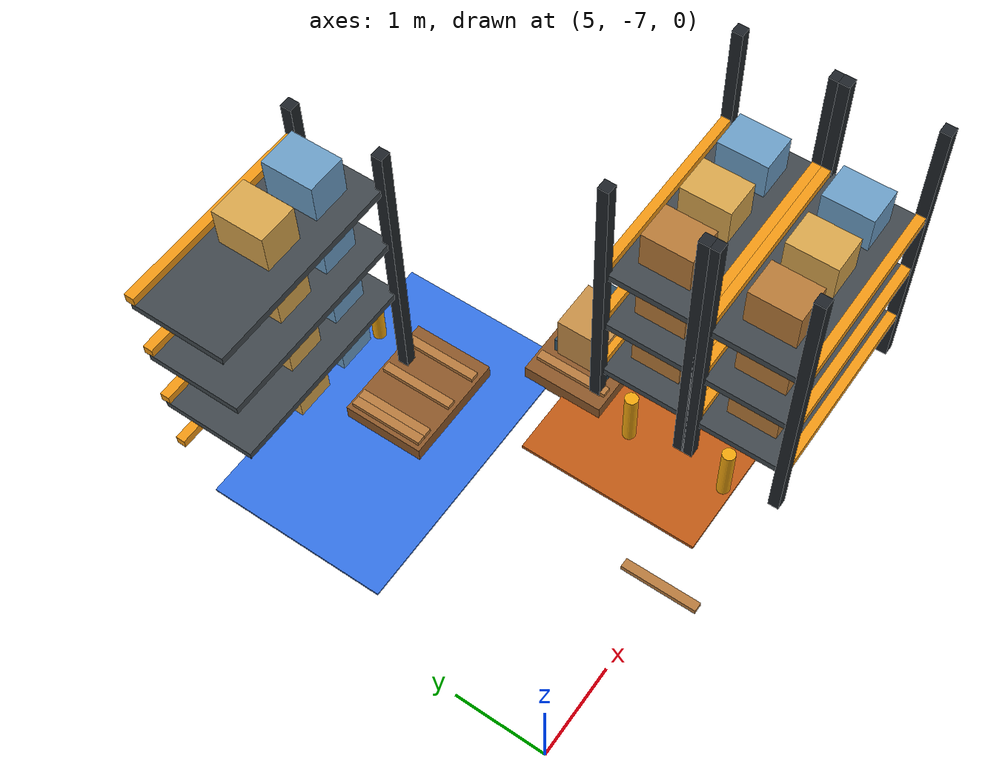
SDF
<sdf version="1.9">
 <world name="synaids_advanced_warehouse">
  <model name="delivery_zone">
   <static>true</static>
   <pose>9 -6 0.02 0 0 0</pose>
   <link name="link">
    <visual name="visual">
     <geometry><box><size>3 2 0.04</size></box></geometry>
     <material><ambient>0.35 0.16 0.03 1</ambient><diffuse>0.75 0.35 0.08 1</diffuse></material>
    </visual>
   </link>
  </model>
  <model name="R3">
   <pose>9 -5 0.25 0 0 0</pose>
   <link name="base_link">
    <inertial><mass>12</mass><inertia><ixx>0.5</ixx><iyy>0.5</iyy><izz>0.5</izz></inertia></inertial>
    <collision name="base_collision"><geometry><box><size>0.9 0.65 0.25</size></box></geometry></collision>
    <visual name="base_visual">
     <geometry><box><size>0.9 0.65 0.25</size></box></geometry>
     <material><ambient>0.10 0.16 0.20 1</ambient><diffuse>0.20 0.32 0.40 1</diffuse></material>
    </visual>
   </link>
   <link name="left_wheel">
    <pose>0 0.38 -0.12 1.5708 0 0</pose>
    <inertial><mass>1</mass><inertia><ixx>0.02</ixx><iyy>0.02</iyy><izz>0.02</izz></inertia></inertial>
    <collision name="collision">
     <geometry><cylinder><radius>0.16</radius><length>0.08</length></cylinder></geometry>
    </collision>
    <visual name="visual">
     <geometry><cylinder><radius>0.16</radius><length>0.08</length></cylinder></geometry>
     <material><ambient>0.03 0.03 0.03 1</ambient><diffuse>0.08 0.08 0.08 1</diffuse></material>
    </visual>
   </link>
   <link name="right_wheel">
    <pose>0 -0.38 -0.12 1.5708 0 0</pose>
    <inertial><mass>1</mass><inertia><ixx>0.02</ixx><iyy>0.02</iyy><izz>0.02</izz></inertia></inertial>
    <collision name="collision">
     <geometry><cylinder><radius>0.16</radius><length>0.08</length></cylinder></geometry>
    </collision>
    <visual name="visual">
     <geometry><cylinder><radius>0.16</radius><length>0.08</length></cylinder></geometry>
     <material><ambient>0.03 0.03 0.03 1</ambient><diffuse>0.08 0.08 0.08 1</diffuse></material>
    </visual>
   </link>
   <link name="sensor">
    <pose>0.35 0 0.18 0 0 0</pose>
    <visual name="visual">
     <geometry><cylinder><radius>0.10</radius><length>0.08</length></cylinder></geometry>
     <material><ambient>0.65 0.65 0.65 1</ambient><diffuse>0.75 0.75 0.75 1</diffuse></material>
    </visual>
   </link>
   <plugin filename="gz-sim-diff-drive-system" name="gz::sim::systems::DiffDrive">
    <left_joint>left_wheel_joint</left_joint>
    <right_joint>right_wheel_joint</right_joint>
    <wheel_separation>0.76</wheel_separation>
    <wheel_radius>0.16</wheel_radius>
    <topic>/R3/cmd_vel</topic>
    <odom_topic>/R3/odom</odom_topic>
    <frame_id>odom</frame_id>
    <child_frame_id>base_link</child_frame_id>
   </plugin>
   <link name="lidar">
    <pose>0 0 0.35 0 0 0</pose>
    <sensor name="lidar_sensor" type="gpu_lidar">
     <topic>/R3/scan</topic>
     <update_rate>10</update_rate>
     <lidar>
      <scan>
       <horizontal>
        <samples>360</samples>
        <resolution>1</resolution>
        <min_angle>-3.14159</min_angle>
        <max_angle>3.14159</max_angle>
       </horizontal>
      </scan>
      <range><min>0.12</min><max>12</max><resolution>0.01</resolution></range>
     </lidar>
    </sensor>
   </link>
   <joint name="left_wheel_joint" type="revolute">
    <parent>base_link</parent>
    <child>left_wheel</child>
    <axis><xyz>0 1 0</xyz></axis>
   </joint>
   <joint name="right_wheel_joint" type="revolute">
    <parent>base_link</parent>
    <child>right_wheel</child>
    <axis><xyz>0 1 0</xyz></axis>
   </joint>
  </model>
  <model name="storage_rack_8_post_2">
   <static>true</static>
   <pose>7.6 -3.5 1.7 0 0 0</pose>
   <link name="link">
    <visual name="visual">
     <geometry><box><size>0.12 0.12 3.4</size></box></geometry>
     <material>
      <ambient>0.12 0.14 0.16 1</ambient>
      <diffuse>0.12 0.14 0.16 1</diffuse>
      <specular>0.15 0.15 0.15 1</specular>
     </material>
    </visual>
    <collision name="collision"><geometry><box><size>0.12 0.12 3.4</size></box></geometry></collision>
   </link>
  </model>
  <model name="storage_rack_8_post_3">
   <static>true</static>
   <pose>7.6 -2.5 1.7 0 0 0</pose>
   <link name="link">
    <visual name="visual">
     <geometry><box><size>0.12 0.12 3.4</size></box></geometry>
     <material>
      <ambient>0.12 0.14 0.16 1</ambient>
      <diffuse>0.12 0.14 0.16 1</diffuse>
      <specular>0.15 0.15 0.15 1</specular>
     </material>
    </visual>
    <collision name="collision"><geometry><box><size>0.12 0.12 3.4</size></box></geometry></collision>
   </link>
  </model>
  <model name="storage_rack_8_beam_back_0">
   <static>true</static>
   <pose>6.5 -2.5 0.65 0 0 0</pose>
   <link name="link">
    <visual name="visual">
     <geometry><box><size>2.2 0.1 0.1</size></box></geometry>
     <material>
      <ambient>0.95 0.60 0.08 1</ambient>
      <diffuse>0.95 0.60 0.08 1</diffuse>
      <specular>0.15 0.15 0.15 1</specular>
     </material>
    </visual>
    <collision name="collision"><geometry><box><size>2.2 0.1 0.1</size></box></geometry></collision>
   </link>
  </model>
  <model name="storage_rack_8_package_0_1">
   <static>true</static>
   <pose>6.5 -3.0 0.87 0 0 0</pose>
   <link name="link">
    <visual name="visual">
     <geometry><box><size>0.42 0.55 0.42</size></box></geometry>
     <material>
      <ambient>0.85 0.65 0.30 1</ambient>
      <diffuse>0.85 0.65 0.30 1</diffuse>
      <specular>0.15 0.15 0.15 1</specular>
     </material>
    </visual>
    <collision name="collision"><geometry><box><size>0.42 0.55 0.42</size></box></geometry></collision>
   </link>
  </model>
  <model name="storage_rack_8_package_0_2">
   <static>true</static>
   <pose>7.1499999999999995 -3.0 0.87 0 0 0</pose>
   <link name="link">
    <visual name="visual">
     <geometry><box><size>0.42 0.55 0.42</size></box></geometry>
     <material>
      <ambient>0.42 0.62 0.78 1</ambient>
      <diffuse>0.42 0.62 0.78 1</diffuse>
      <specular>0.15 0.15 0.15 1</specular>
     </material>
    </visual>
    <collision name="collision"><geometry><box><size>0.42 0.55 0.42</size></box></geometry></collision>
   </link>
  </model>
  <model name="storage_rack_8_beam_back_1">
   <static>true</static>
   <pose>6.5 -2.5 1.4300000000000002 0 0 0</pose>
   <link name="link">
    <visual name="visual">
     <geometry><box><size>2.2 0.1 0.1</size></box></geometry>
     <material>
      <ambient>0.95 0.60 0.08 1</ambient>
      <diffuse>0.95 0.60 0.08 1</diffuse>
      <specular>0.15 0.15 0.15 1</specular>
     </material>
    </visual>
    <collision name="collision"><geometry><box><size>2.2 0.1 0.1</size></box></geometry></collision>
   </link>
  </model>
  <model name="storage_rack_8_shelf_1">
   <static>true</static>
   <pose>6.5 -3.0 1.35 0 0 0</pose>
   <link name="link">
    <visual name="visual">
     <geometry><box><size>2.2 1.0 0.08</size></box></geometry>
     <material>
      <ambient>0.25 0.28 0.30 1</ambient>
      <diffuse>0.25 0.28 0.30 1</diffuse>
      <specular>0.15 0.15 0.15 1</specular>
     </material>
    </visual>
    <collision name="collision"><geometry><box><size>2.2 1.0 0.08</size></box></geometry></collision>
   </link>
  </model>
  <model name="storage_rack_8_package_1_1">
   <static>true</static>
   <pose>6.5 -3.0 1.6500000000000001 0 0 0</pose>
   <link name="link">
    <visual name="visual">
     <geometry><box><size>0.42 0.55 0.42</size></box></geometry>
     <material>
      <ambient>0.85 0.65 0.30 1</ambient>
      <diffuse>0.85 0.65 0.30 1</diffuse>
      <specular>0.15 0.15 0.15 1</specular>
     </material>
    </visual>
    <collision name="collision"><geometry><box><size>0.42 0.55 0.42</size></box></geometry></collision>
   </link>
  </model>
  <model name="storage_rack_8_package_1_2">
   <static>true</static>
   <pose>7.1499999999999995 -3.0 1.6500000000000001 0 0 0</pose>
   <link name="link">
    <visual name="visual">
     <geometry><box><size>0.42 0.55 0.42</size></box></geometry>
     <material>
      <ambient>0.42 0.62 0.78 1</ambient>
      <diffuse>0.42 0.62 0.78 1</diffuse>
      <specular>0.15 0.15 0.15 1</specular>
     </material>
    </visual>
    <collision name="collision"><geometry><box><size>0.42 0.55 0.42</size></box></geometry></collision>
   </link>
  </model>
  <model name="storage_rack_8_beam_back_2">
   <static>true</static>
   <pose>6.5 -2.5 2.21 0 0 0</pose>
   <link name="link">
    <visual name="visual">
     <geometry><box><size>2.2 0.1 0.1</size></box></geometry>
     <material>
      <ambient>0.95 0.60 0.08 1</ambient>
      <diffuse>0.95 0.60 0.08 1</diffuse>
      <specular>0.15 0.15 0.15 1</specular>
     </material>
    </visual>
    <collision name="collision"><geometry><box><size>2.2 0.1 0.1</size></box></geometry></collision>
   </link>
  </model>
  <model name="storage_rack_8_shelf_2">
   <static>true</static>
   <pose>6.5 -3.0 2.13 0 0 0</pose>
   <link name="link">
    <visual name="visual">
     <geometry><box><size>2.2 1.0 0.08</size></box></geometry>
     <material>
      <ambient>0.25 0.28 0.30 1</ambient>
      <diffuse>0.25 0.28 0.30 1</diffuse>
      <specular>0.15 0.15 0.15 1</specular>
     </material>
    </visual>
    <collision name="collision"><geometry><box><size>2.2 1.0 0.08</size></box></geometry></collision>
   </link>
  </model>
  <model name="storage_rack_8_package_2_1">
   <static>true</static>
   <pose>6.5 -3.0 2.43 0 0 0</pose>
   <link name="link">
    <visual name="visual">
     <geometry><box><size>0.42 0.55 0.42</size></box></geometry>
     <material>
      <ambient>0.85 0.65 0.30 1</ambient>
      <diffuse>0.85 0.65 0.30 1</diffuse>
      <specular>0.15 0.15 0.15 1</specular>
     </material>
    </visual>
    <collision name="collision"><geometry><box><size>0.42 0.55 0.42</size></box></geometry></collision>
   </link>
  </model>
  <model name="storage_rack_8_package_2_2">
   <static>true</static>
   <pose>7.1499999999999995 -3.0 2.43 0 0 0</pose>
   <link name="link">
    <visual name="visual">
     <geometry><box><size>0.42 0.55 0.42</size></box></geometry>
     <material>
      <ambient>0.42 0.62 0.78 1</ambient>
      <diffuse>0.42 0.62 0.78 1</diffuse>
      <specular>0.15 0.15 0.15 1</specular>
     </material>
    </visual>
    <collision name="collision"><geometry><box><size>0.42 0.55 0.42</size></box></geometry></collision>
   </link>
  </model>
  <model name="storage_rack_8_beam_back_3">
   <static>true</static>
   <pose>6.5 -2.5 2.9899999999999998 0 0 0</pose>
   <link name="link">
    <visual name="visual">
     <geometry><box><size>2.2 0.1 0.1</size></box></geometry>
     <material>
      <ambient>0.95 0.60 0.08 1</ambient>
      <diffuse>0.95 0.60 0.08 1</diffuse>
      <specular>0.15 0.15 0.15 1</specular>
     </material>
    </visual>
    <collision name="collision"><geometry><box><size>2.2 0.1 0.1</size></box></geometry></collision>
   </link>
  </model>
  <model name="storage_rack_8_shelf_3">
   <static>true</static>
   <pose>6.5 -3.0 2.9099999999999997 0 0 0</pose>
   <link name="link">
    <visual name="visual">
     <geometry><box><size>2.2 1.0 0.08</size></box></geometry>
     <material>
      <ambient>0.25 0.28 0.30 1</ambient>
      <diffuse>0.25 0.28 0.30 1</diffuse>
      <specular>0.15 0.15 0.15 1</specular>
     </material>
    </visual>
    <collision name="collision"><geometry><box><size>2.2 1.0 0.08</size></box></geometry></collision>
   </link>
  </model>
  <model name="storage_rack_8_package_3_1">
   <static>true</static>
   <pose>6.5 -3.0 3.21 0 0 0</pose>
   <link name="link">
    <visual name="visual">
     <geometry><box><size>0.42 0.55 0.42</size></box></geometry>
     <material>
      <ambient>0.85 0.65 0.30 1</ambient>
      <diffuse>0.85 0.65 0.30 1</diffuse>
      <specular>0.15 0.15 0.15 1</specular>
     </material>
    </visual>
    <collision name="collision"><geometry><box><size>0.42 0.55 0.42</size></box></geometry></collision>
   </link>
  </model>
  <model name="storage_rack_8_package_3_2">
   <static>true</static>
   <pose>7.1499999999999995 -3.0 3.21 0 0 0</pose>
   <link name="link">
    <visual name="visual">
     <geometry><box><size>0.42 0.55 0.42</size></box></geometry>
     <material>
      <ambient>0.42 0.62 0.78 1</ambient>
      <diffuse>0.42 0.62 0.78 1</diffuse>
      <specular>0.15 0.15 0.15 1</specular>
     </material>
    </visual>
    <collision name="collision"><geometry><box><size>0.42 0.55 0.42</size></box></geometry></collision>
   </link>
  </model>
  <model name="storage_rack_8_guard_right">
   <static>true</static>
   <pose>7.779999999999999 -3.0 0.35 0 0 0</pose>
   <link name="link">
    <visual name="visual">
     <geometry><cylinder><radius>0.07</radius><length>0.7</length></cylinder></geometry>
     <material>
      <ambient>0.95 0.65 0.05 1</ambient>
      <diffuse>0.95 0.65 0.05 1</diffuse>
      <specular>0.15 0.15 0.15 1</specular>
     </material>
    </visual>
    <collision name="collision">
     <geometry><cylinder><radius>0.07</radius><length>0.7</length></cylinder></geometry>
    </collision>
   </link>
  </model>
  <model name="wall_rack_right_3_post_0">
   <static>true</static>
   <pose>8.4 -6.3 1.7 0 0 0</pose>
   <link name="link">
    <visual name="visual">
     <geometry><box><size>0.12 0.12 3.4</size></box></geometry>
     <material>
      <ambient>0.12 0.14 0.16 1</ambient>
      <diffuse>0.12 0.14 0.16 1</diffuse>
      <specular>0.15 0.15 0.15 1</specular>
     </material>
    </visual>
    <collision name="collision"><geometry><box><size>0.12 0.12 3.4</size></box></geometry></collision>
   </link>
  </model>
  <model name="wall_rack_right_3_post_1">
   <static>true</static>
   <pose>8.4 -5.3 1.7 0 0 0</pose>
   <link name="link">
    <visual name="visual">
     <geometry><box><size>0.12 0.12 3.4</size></box></geometry>
     <material>
      <ambient>0.12 0.14 0.16 1</ambient>
      <diffuse>0.12 0.14 0.16 1</diffuse>
      <specular>0.15 0.15 0.15 1</specular>
     </material>
    </visual>
    <collision name="collision"><geometry><box><size>0.12 0.12 3.4</size></box></geometry></collision>
   </link>
  </model>
  <model name="wall_rack_right_3_post_2">
   <static>true</static>
   <pose>10.6 -6.3 1.7 0 0 0</pose>
   <link name="link">
    <visual name="visual">
     <geometry><box><size>0.12 0.12 3.4</size></box></geometry>
     <material>
      <ambient>0.12 0.14 0.16 1</ambient>
      <diffuse>0.12 0.14 0.16 1</diffuse>
      <specular>0.15 0.15 0.15 1</specular>
     </material>
    </visual>
    <collision name="collision"><geometry><box><size>0.12 0.12 3.4</size></box></geometry></collision>
   </link>
  </model>
  <model name="wall_rack_right_3_post_3">
   <static>true</static>
   <pose>10.6 -5.3 1.7 0 0 0</pose>
   <link name="link">
    <visual name="visual">
     <geometry><box><size>0.12 0.12 3.4</size></box></geometry>
     <material>
      <ambient>0.12 0.14 0.16 1</ambient>
      <diffuse>0.12 0.14 0.16 1</diffuse>
      <specular>0.15 0.15 0.15 1</specular>
     </material>
    </visual>
    <collision name="collision"><geometry><box><size>0.12 0.12 3.4</size></box></geometry></collision>
   </link>
  </model>
  <model name="wall_rack_right_3_beam_front_0">
   <static>true</static>
   <pose>9.5 -6.3 0.65 0 0 0</pose>
   <link name="link">
    <visual name="visual">
     <geometry><box><size>2.2 0.1 0.1</size></box></geometry>
     <material>
      <ambient>0.95 0.60 0.08 1</ambient>
      <diffuse>0.95 0.60 0.08 1</diffuse>
      <specular>0.15 0.15 0.15 1</specular>
     </material>
    </visual>
    <collision name="collision"><geometry><box><size>2.2 0.1 0.1</size></box></geometry></collision>
   </link>
  </model>
  <model name="wall_rack_right_3_beam_back_0">
   <static>true</static>
   <pose>9.5 -5.3 0.65 0 0 0</pose>
   <link name="link">
    <visual name="visual">
     <geometry><box><size>2.2 0.1 0.1</size></box></geometry>
     <material>
      <ambient>0.95 0.60 0.08 1</ambient>
      <diffuse>0.95 0.60 0.08 1</diffuse>
      <specular>0.15 0.15 0.15 1</specular>
     </material>
    </visual>
    <collision name="collision"><geometry><box><size>2.2 0.1 0.1</size></box></geometry></collision>
   </link>
  </model>
  <model name="wall_rack_right_3_shelf_0">
   <static>true</static>
   <pose>9.5 -5.8 0.5700000000000001 0 0 0</pose>
   <link name="link">
    <visual name="visual">
     <geometry><box><size>2.2 1.0 0.08</size></box></geometry>
     <material>
      <ambient>0.25 0.28 0.30 1</ambient>
      <diffuse>0.25 0.28 0.30 1</diffuse>
      <specular>0.15 0.15 0.15 1</specular>
     </material>
    </visual>
    <collision name="collision"><geometry><box><size>2.2 1.0 0.08</size></box></geometry></collision>
   </link>
  </model>
  <model name="wall_rack_right_3_package_0_0">
   <static>true</static>
   <pose>8.85 -5.8 0.87 0 0 0</pose>
   <link name="link">
    <visual name="visual">
     <geometry><box><size>0.42 0.55 0.42</size></box></geometry>
     <material>
      <ambient>0.72 0.48 0.22 1</ambient>
      <diffuse>0.72 0.48 0.22 1</diffuse>
      <specular>0.15 0.15 0.15 1</specular>
     </material>
    </visual>
    <collision name="collision"><geometry><box><size>0.42 0.55 0.42</size></box></geometry></collision>
   </link>
  </model>
  <model name="wall_rack_right_3_package_0_1">
   <static>true</static>
   <pose>9.5 -5.8 0.87 0 0 0</pose>
   <link name="link">
    <visual name="visual">
     <geometry><box><size>0.42 0.55 0.42</size></box></geometry>
     <material>
      <ambient>0.85 0.65 0.30 1</ambient>
      <diffuse>0.85 0.65 0.30 1</diffuse>
      <specular>0.15 0.15 0.15 1</specular>
     </material>
    </visual>
    <collision name="collision"><geometry><box><size>0.42 0.55 0.42</size></box></geometry></collision>
   </link>
  </model>
  <model name="wall_rack_right_3_package_0_2">
   <static>true</static>
   <pose>10.15 -5.8 0.87 0 0 0</pose>
   <link name="link">
    <visual name="visual">
     <geometry><box><size>0.42 0.55 0.42</size></box></geometry>
     <material>
      <ambient>0.42 0.62 0.78 1</ambient>
      <diffuse>0.42 0.62 0.78 1</diffuse>
      <specular>0.15 0.15 0.15 1</specular>
     </material>
    </visual>
    <collision name="collision"><geometry><box><size>0.42 0.55 0.42</size></box></geometry></collision>
   </link>
  </model>
  <model name="wall_rack_right_3_beam_front_1">
   <static>true</static>
   <pose>9.5 -6.3 1.4300000000000002 0 0 0</pose>
   <link name="link">
    <visual name="visual">
     <geometry><box><size>2.2 0.1 0.1</size></box></geometry>
     <material>
      <ambient>0.95 0.60 0.08 1</ambient>
      <diffuse>0.95 0.60 0.08 1</diffuse>
      <specular>0.15 0.15 0.15 1</specular>
     </material>
    </visual>
    <collision name="collision"><geometry><box><size>2.2 0.1 0.1</size></box></geometry></collision>
   </link>
  </model>
  <model name="wall_rack_right_3_beam_back_1">
   <static>true</static>
   <pose>9.5 -5.3 1.4300000000000002 0 0 0</pose>
   <link name="link">
    <visual name="visual">
     <geometry><box><size>2.2 0.1 0.1</size></box></geometry>
     <material>
      <ambient>0.95 0.60 0.08 1</ambient>
      <diffuse>0.95 0.60 0.08 1</diffuse>
      <specular>0.15 0.15 0.15 1</specular>
     </material>
    </visual>
    <collision name="collision"><geometry><box><size>2.2 0.1 0.1</size></box></geometry></collision>
   </link>
  </model>
  <model name="wall_rack_right_3_shelf_1">
   <static>true</static>
   <pose>9.5 -5.8 1.35 0 0 0</pose>
   <link name="link">
    <visual name="visual">
     <geometry><box><size>2.2 1.0 0.08</size></box></geometry>
     <material>
      <ambient>0.25 0.28 0.30 1</ambient>
      <diffuse>0.25 0.28 0.30 1</diffuse>
      <specular>0.15 0.15 0.15 1</specular>
     </material>
    </visual>
    <collision name="collision"><geometry><box><size>2.2 1.0 0.08</size></box></geometry></collision>
   </link>
  </model>
  <model name="wall_rack_right_3_package_1_0">
   <static>true</static>
   <pose>8.85 -5.8 1.6500000000000001 0 0 0</pose>
   <link name="link">
    <visual name="visual">
     <geometry><box><size>0.42 0.55 0.42</size></box></geometry>
     <material>
      <ambient>0.72 0.48 0.22 1</ambient>
      <diffuse>0.72 0.48 0.22 1</diffuse>
      <specular>0.15 0.15 0.15 1</specular>
     </material>
    </visual>
    <collision name="collision"><geometry><box><size>0.42 0.55 0.42</size></box></geometry></collision>
   </link>
  </model>
  <model name="wall_rack_right_3_package_1_1">
   <static>true</static>
   <pose>9.5 -5.8 1.6500000000000001 0 0 0</pose>
   <link name="link">
    <visual name="visual">
     <geometry><box><size>0.42 0.55 0.42</size></box></geometry>
     <material>
      <ambient>0.85 0.65 0.30 1</ambient>
      <diffuse>0.85 0.65 0.30 1</diffuse>
      <specular>0.15 0.15 0.15 1</specular>
     </material>
    </visual>
    <collision name="collision"><geometry><box><size>0.42 0.55 0.42</size></box></geometry></collision>
   </link>
  </model>
  <model name="wall_rack_right_3_package_1_2">
   <static>true</static>
   <pose>10.15 -5.8 1.6500000000000001 0 0 0</pose>
   <link name="link">
    <visual name="visual">
     <geometry><box><size>0.42 0.55 0.42</size></box></geometry>
     <material>
      <ambient>0.42 0.62 0.78 1</ambient>
      <diffuse>0.42 0.62 0.78 1</diffuse>
      <specular>0.15 0.15 0.15 1</specular>
     </material>
    </visual>
    <collision name="collision"><geometry><box><size>0.42 0.55 0.42</size></box></geometry></collision>
   </link>
  </model>
  <model name="wall_rack_right_3_beam_front_2">
   <static>true</static>
   <pose>9.5 -6.3 2.21 0 0 0</pose>
   <link name="link">
    <visual name="visual">
     <geometry><box><size>2.2 0.1 0.1</size></box></geometry>
     <material>
      <ambient>0.95 0.60 0.08 1</ambient>
      <diffuse>0.95 0.60 0.08 1</diffuse>
      <specular>0.15 0.15 0.15 1</specular>
     </material>
    </visual>
    <collision name="collision"><geometry><box><size>2.2 0.1 0.1</size></box></geometry></collision>
   </link>
  </model>
  <model name="wall_rack_right_3_beam_back_2">
   <static>true</static>
   <pose>9.5 -5.3 2.21 0 0 0</pose>
   <link name="link">
    <visual name="visual">
     <geometry><box><size>2.2 0.1 0.1</size></box></geometry>
     <material>
      <ambient>0.95 0.60 0.08 1</ambient>
      <diffuse>0.95 0.60 0.08 1</diffuse>
      <specular>0.15 0.15 0.15 1</specular>
     </material>
    </visual>
    <collision name="collision"><geometry><box><size>2.2 0.1 0.1</size></box></geometry></collision>
   </link>
  </model>
  <model name="wall_rack_right_3_shelf_2">
   <static>true</static>
   <pose>9.5 -5.8 2.13 0 0 0</pose>
   <link name="link">
    <visual name="visual">
     <geometry><box><size>2.2 1.0 0.08</size></box></geometry>
     <material>
      <ambient>0.25 0.28 0.30 1</ambient>
      <diffuse>0.25 0.28 0.30 1</diffuse>
      <specular>0.15 0.15 0.15 1</specular>
     </material>
    </visual>
    <collision name="collision"><geometry><box><size>2.2 1.0 0.08</size></box></geometry></collision>
   </link>
  </model>
  <model name="wall_rack_right_3_package_2_0">
   <static>true</static>
   <pose>8.85 -5.8 2.43 0 0 0</pose>
   <link name="link">
    <visual name="visual">
     <geometry><box><size>0.42 0.55 0.42</size></box></geometry>
     <material>
      <ambient>0.72 0.48 0.22 1</ambient>
      <diffuse>0.72 0.48 0.22 1</diffuse>
      <specular>0.15 0.15 0.15 1</specular>
     </material>
    </visual>
    <collision name="collision"><geometry><box><size>0.42 0.55 0.42</size></box></geometry></collision>
   </link>
  </model>
  <model name="wall_rack_right_3_package_2_1">
   <static>true</static>
   <pose>9.5 -5.8 2.43 0 0 0</pose>
   <link name="link">
    <visual name="visual">
     <geometry><box><size>0.42 0.55 0.42</size></box></geometry>
     <material>
      <ambient>0.85 0.65 0.30 1</ambient>
      <diffuse>0.85 0.65 0.30 1</diffuse>
      <specular>0.15 0.15 0.15 1</specular>
     </material>
    </visual>
    <collision name="collision"><geometry><box><size>0.42 0.55 0.42</size></box></geometry></collision>
   </link>
  </model>
  <model name="wall_rack_right_3_package_2_2">
   <static>true</static>
   <pose>10.15 -5.8 2.43 0 0 0</pose>
   <link name="link">
    <visual name="visual">
     <geometry><box><size>0.42 0.55 0.42</size></box></geometry>
     <material>
      <ambient>0.42 0.62 0.78 1</ambient>
      <diffuse>0.42 0.62 0.78 1</diffuse>
      <specular>0.15 0.15 0.15 1</specular>
     </material>
    </visual>
    <collision name="collision"><geometry><box><size>0.42 0.55 0.42</size></box></geometry></collision>
   </link>
  </model>
  <model name="wall_rack_right_3_guard_left">
   <static>true</static>
   <pose>8.22 -5.8 0.35 0 0 0</pose>
   <link name="link">
    <visual name="visual">
     <geometry><cylinder><radius>0.07</radius><length>0.7</length></cylinder></geometry>
     <material>
      <ambient>0.95 0.65 0.05 1</ambient>
      <diffuse>0.95 0.65 0.05 1</diffuse>
      <specular>0.15 0.15 0.15 1</specular>
     </material>
    </visual>
    <collision name="collision">
     <geometry><cylinder><radius>0.07</radius><length>0.7</length></cylinder></geometry>
    </collision>
   </link>
  </model>
  <model name="wall_rack_right_3_guard_right">
   <static>true</static>
   <pose>10.78 -5.8 0.35 0 0 0</pose>
   <link name="link">
    <visual name="visual">
     <geometry><cylinder><radius>0.07</radius><length>0.7</length></cylinder></geometry>
     <material>
      <ambient>0.95 0.65 0.05 1</ambient>
      <diffuse>0.95 0.65 0.05 1</diffuse>
      <specular>0.15 0.15 0.15 1</specular>
     </material>
    </visual>
    <collision name="collision">
     <geometry><cylinder><radius>0.07</radius><length>0.7</length></cylinder></geometry>
    </collision>
   </link>
  </model>
  <model name="wall_rack_right_4_post_0">
   <static>true</static>
   <pose>8.4 -7.4 1.7 0 0 0</pose>
   <link name="link">
    <visual name="visual">
     <geometry><box><size>0.12 0.12 3.4</size></box></geometry>
     <material>
      <ambient>0.12 0.14 0.16 1</ambient>
      <diffuse>0.12 0.14 0.16 1</diffuse>
      <specular>0.15 0.15 0.15 1</specular>
     </material>
    </visual>
    <collision name="collision"><geometry><box><size>0.12 0.12 3.4</size></box></geometry></collision>
   </link>
  </model>
  <model name="wall_rack_right_4_post_1">
   <static>true</static>
   <pose>8.4 -6.4 1.7 0 0 0</pose>
   <link name="link">
    <visual name="visual">
     <geometry><box><size>0.12 0.12 3.4</size></box></geometry>
     <material>
      <ambient>0.12 0.14 0.16 1</ambient>
      <diffuse>0.12 0.14 0.16 1</diffuse>
      <specular>0.15 0.15 0.15 1</specular>
     </material>
    </visual>
    <collision name="collision"><geometry><box><size>0.12 0.12 3.4</size></box></geometry></collision>
   </link>
  </model>
  <model name="wall_rack_right_4_post_2">
   <static>true</static>
   <pose>10.6 -7.4 1.7 0 0 0</pose>
   <link name="link">
    <visual name="visual">
     <geometry><box><size>0.12 0.12 3.4</size></box></geometry>
     <material>
      <ambient>0.12 0.14 0.16 1</ambient>
      <diffuse>0.12 0.14 0.16 1</diffuse>
      <specular>0.15 0.15 0.15 1</specular>
     </material>
    </visual>
    <collision name="collision"><geometry><box><size>0.12 0.12 3.4</size></box></geometry></collision>
   </link>
  </model>
  <model name="wall_rack_right_4_post_3">
   <static>true</static>
   <pose>10.6 -6.4 1.7 0 0 0</pose>
   <link name="link">
    <visual name="visual">
     <geometry><box><size>0.12 0.12 3.4</size></box></geometry>
     <material>
      <ambient>0.12 0.14 0.16 1</ambient>
      <diffuse>0.12 0.14 0.16 1</diffuse>
      <specular>0.15 0.15 0.15 1</specular>
     </material>
    </visual>
    <collision name="collision"><geometry><box><size>0.12 0.12 3.4</size></box></geometry></collision>
   </link>
  </model>
  <model name="wall_rack_right_4_beam_front_0">
   <static>true</static>
   <pose>9.5 -7.4 0.65 0 0 0</pose>
   <link name="link">
    <visual name="visual">
     <geometry><box><size>2.2 0.1 0.1</size></box></geometry>
     <material>
      <ambient>0.95 0.60 0.08 1</ambient>
      <diffuse>0.95 0.60 0.08 1</diffuse>
      <specular>0.15 0.15 0.15 1</specular>
     </material>
    </visual>
    <collision name="collision"><geometry><box><size>2.2 0.1 0.1</size></box></geometry></collision>
   </link>
  </model>
  <model name="wall_rack_right_4_beam_back_0">
   <static>true</static>
   <pose>9.5 -6.4 0.65 0 0 0</pose>
   <link name="link">
    <visual name="visual">
     <geometry><box><size>2.2 0.1 0.1</size></box></geometry>
     <material>
      <ambient>0.95 0.60 0.08 1</ambient>
      <diffuse>0.95 0.60 0.08 1</diffuse>
      <specular>0.15 0.15 0.15 1</specular>
     </material>
    </visual>
    <collision name="collision"><geometry><box><size>2.2 0.1 0.1</size></box></geometry></collision>
   </link>
  </model>
  <model name="wall_rack_right_4_shelf_0">
   <static>true</static>
   <pose>9.5 -6.9 0.5700000000000001 0 0 0</pose>
   <link name="link">
    <visual name="visual">
     <geometry><box><size>2.2 1.0 0.08</size></box></geometry>
     <material>
      <ambient>0.25 0.28 0.30 1</ambient>
      <diffuse>0.25 0.28 0.30 1</diffuse>
      <specular>0.15 0.15 0.15 1</specular>
     </material>
    </visual>
    <collision name="collision"><geometry><box><size>2.2 1.0 0.08</size></box></geometry></collision>
   </link>
  </model>
  <model name="wall_rack_right_4_package_0_0">
   <static>true</static>
   <pose>8.85 -6.9 0.87 0 0 0</pose>
   <link name="link">
    <visual name="visual">
     <geometry><box><size>0.42 0.55 0.42</size></box></geometry>
     <material>
      <ambient>0.72 0.48 0.22 1</ambient>
      <diffuse>0.72 0.48 0.22 1</diffuse>
      <specular>0.15 0.15 0.15 1</specular>
     </material>
    </visual>
    <collision name="collision"><geometry><box><size>0.42 0.55 0.42</size></box></geometry></collision>
   </link>
  </model>
  <model name="wall_rack_right_4_package_0_1">
   <static>true</static>
   <pose>9.5 -6.9 0.87 0 0 0</pose>
   <link name="link">
    <visual name="visual">
     <geometry><box><size>0.42 0.55 0.42</size></box></geometry>
     <material>
      <ambient>0.85 0.65 0.30 1</ambient>
      <diffuse>0.85 0.65 0.30 1</diffuse>
      <specular>0.15 0.15 0.15 1</specular>
     </material>
    </visual>
    <collision name="collision"><geometry><box><size>0.42 0.55 0.42</size></box></geometry></collision>
   </link>
  </model>
  <model name="wall_rack_right_4_package_0_2">
   <static>true</static>
   <pose>10.15 -6.9 0.87 0 0 0</pose>
   <link name="link">
    <visual name="visual">
     <geometry><box><size>0.42 0.55 0.42</size></box></geometry>
     <material>
      <ambient>0.42 0.62 0.78 1</ambient>
      <diffuse>0.42 0.62 0.78 1</diffuse>
      <specular>0.15 0.15 0.15 1</specular>
     </material>
    </visual>
    <collision name="collision"><geometry><box><size>0.42 0.55 0.42</size></box></geometry></collision>
   </link>
  </model>
  <model name="wall_rack_right_4_beam_front_1">
   <static>true</static>
   <pose>9.5 -7.4 1.4300000000000002 0 0 0</pose>
   <link name="link">
    <visual name="visual">
     <geometry><box><size>2.2 0.1 0.1</size></box></geometry>
     <material>
      <ambient>0.95 0.60 0.08 1</ambient>
      <diffuse>0.95 0.60 0.08 1</diffuse>
      <specular>0.15 0.15 0.15 1</specular>
     </material>
    </visual>
    <collision name="collision"><geometry><box><size>2.2 0.1 0.1</size></box></geometry></collision>
   </link>
  </model>
  <model name="wall_rack_right_4_beam_back_1">
   <static>true</static>
   <pose>9.5 -6.4 1.4300000000000002 0 0 0</pose>
   <link name="link">
    <visual name="visual">
     <geometry><box><size>2.2 0.1 0.1</size></box></geometry>
     <material>
      <ambient>0.95 0.60 0.08 1</ambient>
      <diffuse>0.95 0.60 0.08 1</diffuse>
      <specular>0.15 0.15 0.15 1</specular>
     </material>
    </visual>
    <collision name="collision"><geometry><box><size>2.2 0.1 0.1</size></box></geometry></collision>
   </link>
  </model>
  <model name="wall_rack_right_4_shelf_1">
   <static>true</static>
   <pose>9.5 -6.9 1.35 0 0 0</pose>
   <link name="link">
    <visual name="visual">
     <geometry><box><size>2.2 1.0 0.08</size></box></geometry>
     <material>
      <ambient>0.25 0.28 0.30 1</ambient>
      <diffuse>0.25 0.28 0.30 1</diffuse>
      <specular>0.15 0.15 0.15 1</specular>
     </material>
    </visual>
    <collision name="collision"><geometry><box><size>2.2 1.0 0.08</size></box></geometry></collision>
   </link>
  </model>
  <model name="wall_rack_right_4_package_1_0">
   <static>true</static>
   <pose>8.85 -6.9 1.6500000000000001 0 0 0</pose>
   <link name="link">
    <visual name="visual">
     <geometry><box><size>0.42 0.55 0.42</size></box></geometry>
     <material>
      <ambient>0.72 0.48 0.22 1</ambient>
      <diffuse>0.72 0.48 0.22 1</diffuse>
      <specular>0.15 0.15 0.15 1</specular>
     </material>
    </visual>
    <collision name="collision"><geometry><box><size>0.42 0.55 0.42</size></box></geometry></collision>
   </link>
  </model>
  <model name="wall_rack_right_4_package_1_1">
   <static>true</static>
   <pose>9.5 -6.9 1.6500000000000001 0 0 0</pose>
   <link name="link">
    <visual name="visual">
     <geometry><box><size>0.42 0.55 0.42</size></box></geometry>
     <material>
      <ambient>0.85 0.65 0.30 1</ambient>
      <diffuse>0.85 0.65 0.30 1</diffuse>
      <specular>0.15 0.15 0.15 1</specular>
     </material>
    </visual>
    <collision name="collision"><geometry><box><size>0.42 0.55 0.42</size></box></geometry></collision>
   </link>
  </model>
  <model name="wall_rack_right_4_package_1_2">
   <static>true</static>
   <pose>10.15 -6.9 1.6500000000000001 0 0 0</pose>
   <link name="link">
    <visual name="visual">
     <geometry><box><size>0.42 0.55 0.42</size></box></geometry>
     <material>
      <ambient>0.42 0.62 0.78 1</ambient>
      <diffuse>0.42 0.62 0.78 1</diffuse>
      <specular>0.15 0.15 0.15 1</specular>
     </material>
    </visual>
    <collision name="collision"><geometry><box><size>0.42 0.55 0.42</size></box></geometry></collision>
   </link>
  </model>
  <model name="wall_rack_right_4_beam_front_2">
   <static>true</static>
   <pose>9.5 -7.4 2.21 0 0 0</pose>
   <link name="link">
    <visual name="visual">
     <geometry><box><size>2.2 0.1 0.1</size></box></geometry>
     <material>
      <ambient>0.95 0.60 0.08 1</ambient>
      <diffuse>0.95 0.60 0.08 1</diffuse>
      <specular>0.15 0.15 0.15 1</specular>
     </material>
    </visual>
    <collision name="collision"><geometry><box><size>2.2 0.1 0.1</size></box></geometry></collision>
   </link>
  </model>
  <model name="wall_rack_right_4_beam_back_2">
   <static>true</static>
   <pose>9.5 -6.4 2.21 0 0 0</pose>
   <link name="link">
    <visual name="visual">
     <geometry><box><size>2.2 0.1 0.1</size></box></geometry>
     <material>
      <ambient>0.95 0.60 0.08 1</ambient>
      <diffuse>0.95 0.60 0.08 1</diffuse>
      <specular>0.15 0.15 0.15 1</specular>
     </material>
    </visual>
    <collision name="collision"><geometry><box><size>2.2 0.1 0.1</size></box></geometry></collision>
   </link>
  </model>
  <model name="wall_rack_right_4_shelf_2">
   <static>true</static>
   <pose>9.5 -6.9 2.13 0 0 0</pose>
   <link name="link">
    <visual name="visual">
     <geometry><box><size>2.2 1.0 0.08</size></box></geometry>
     <material>
      <ambient>0.25 0.28 0.30 1</ambient>
      <diffuse>0.25 0.28 0.30 1</diffuse>
      <specular>0.15 0.15 0.15 1</specular>
     </material>
    </visual>
    <collision name="collision"><geometry><box><size>2.2 1.0 0.08</size></box></geometry></collision>
   </link>
  </model>
  <model name="wall_rack_right_4_package_2_0">
   <static>true</static>
   <pose>8.85 -6.9 2.43 0 0 0</pose>
   <link name="link">
    <visual name="visual">
     <geometry><box><size>0.42 0.55 0.42</size></box></geometry>
     <material>
      <ambient>0.72 0.48 0.22 1</ambient>
      <diffuse>0.72 0.48 0.22 1</diffuse>
      <specular>0.15 0.15 0.15 1</specular>
     </material>
    </visual>
    <collision name="collision"><geometry><box><size>0.42 0.55 0.42</size></box></geometry></collision>
   </link>
  </model>
  <model name="wall_rack_right_4_package_2_1">
   <static>true</static>
   <pose>9.5 -6.9 2.43 0 0 0</pose>
   <link name="link">
    <visual name="visual">
     <geometry><box><size>0.42 0.55 0.42</size></box></geometry>
     <material>
      <ambient>0.85 0.65 0.30 1</ambient>
      <diffuse>0.85 0.65 0.30 1</diffuse>
      <specular>0.15 0.15 0.15 1</specular>
     </material>
    </visual>
    <collision name="collision"><geometry><box><size>0.42 0.55 0.42</size></box></geometry></collision>
   </link>
  </model>
  <model name="wall_rack_right_4_package_2_2">
   <static>true</static>
   <pose>10.15 -6.9 2.43 0 0 0</pose>
   <link name="link">
    <visual name="visual">
     <geometry><box><size>0.42 0.55 0.42</size></box></geometry>
     <material>
      <ambient>0.42 0.62 0.78 1</ambient>
      <diffuse>0.42 0.62 0.78 1</diffuse>
      <specular>0.15 0.15 0.15 1</specular>
     </material>
    </visual>
    <collision name="collision"><geometry><box><size>0.42 0.55 0.42</size></box></geometry></collision>
   </link>
  </model>
  <model name="wall_rack_right_4_guard_left">
   <static>true</static>
   <pose>8.22 -6.9 0.35 0 0 0</pose>
   <link name="link">
    <visual name="visual">
     <geometry><cylinder><radius>0.07</radius><length>0.7</length></cylinder></geometry>
     <material>
      <ambient>0.95 0.65 0.05 1</ambient>
      <diffuse>0.95 0.65 0.05 1</diffuse>
      <specular>0.15 0.15 0.15 1</specular>
     </material>
    </visual>
    <collision name="collision">
     <geometry><cylinder><radius>0.07</radius><length>0.7</length></cylinder></geometry>
    </collision>
   </link>
  </model>
  <model name="wall_rack_right_4_guard_right">
   <static>true</static>
   <pose>10.78 -6.9 0.35 0 0 0</pose>
   <link name="link">
    <visual name="visual">
     <geometry><cylinder><radius>0.07</radius><length>0.7</length></cylinder></geometry>
     <material>
      <ambient>0.95 0.65 0.05 1</ambient>
      <diffuse>0.95 0.65 0.05 1</diffuse>
      <specular>0.15 0.15 0.15 1</specular>
     </material>
    </visual>
    <collision name="collision">
     <geometry><cylinder><radius>0.07</radius><length>0.7</length></cylinder></geometry>
    </collision>
   </link>
  </model>
  <model name="dropoff_pallet_3_slat_2">
   <static>true</static>
   <pose>6.8999999999999995 -7.0 0.22 0 0 0</pose>
   <link name="link">
    <visual name="visual">
     <geometry><box><size>0.1 0.82 0.06</size></box></geometry>
     <material>
      <ambient>0.72 0.48 0.24 1</ambient>
      <diffuse>0.72 0.48 0.24 1</diffuse>
      <specular>0.15 0.15 0.15 1</specular>
     </material>
    </visual>
    <collision name="collision"><geometry><box><size>0.1 0.82 0.06</size></box></geometry></collision>
   </link>
  </model>
  <model name="waiting_bay">
   <static>true</static>
   <pose>7.0 -3.8 0.012 0 0 0</pose>
   <link name="link">
    <visual name="visual">
     <geometry><box><size>3.2 2.0 0.025</size></box></geometry>
     <material>
      <ambient>0.20 0.45 0.90 1</ambient>
      <diffuse>0.20 0.45 0.90 1</diffuse>
      <specular>0.15 0.15 0.15 1</specular>
     </material>
    </visual>
   </link>
  </model>
  <model name="waiting_pallet_1_slat_2">
   <static>true</static>
   <pose>6.8999999999999995 -3.8 0.21000000000000002 0 0 0</pose>
   <link name="link">
    <visual name="visual">
     <geometry><box><size>0.1 0.82 0.06</size></box></geometry>
     <material>
      <ambient>0.72 0.48 0.24 1</ambient>
      <diffuse>0.72 0.48 0.24 1</diffuse>
      <specular>0.15 0.15 0.15 1</specular>
     </material>
    </visual>
    <collision name="collision"><geometry><box><size>0.1 0.82 0.06</size></box></geometry></collision>
   </link>
  </model>
  <model name="waiting_pallet_2_base">
   <static>true</static>
   <pose>7.4 -3.8 0.1 0 0 0</pose>
   <link name="link">
    <visual name="visual">
     <geometry><box><size>1.2 0.9 0.18</size></box></geometry>
     <material>
      <ambient>0.55 0.34 0.16 1</ambient>
      <diffuse>0.55 0.34 0.16 1</diffuse>
      <specular>0.15 0.15 0.15 1</specular>
     </material>
    </visual>
    <collision name="collision"><geometry><box><size>1.2 0.9 0.18</size></box></geometry></collision>
   </link>
  </model>
  <model name="waiting_pallet_2_slat_0">
   <static>true</static>
   <pose>7.0 -3.8 0.21000000000000002 0 0 0</pose>
   <link name="link">
    <visual name="visual">
     <geometry><box><size>0.1 0.82 0.06</size></box></geometry>
     <material>
      <ambient>0.72 0.48 0.24 1</ambient>
      <diffuse>0.72 0.48 0.24 1</diffuse>
      <specular>0.15 0.15 0.15 1</specular>
     </material>
    </visual>
    <collision name="collision"><geometry><box><size>0.1 0.82 0.06</size></box></geometry></collision>
   </link>
  </model>
  <model name="waiting_pallet_2_slat_1">
   <static>true</static>
   <pose>7.4 -3.8 0.21000000000000002 0 0 0</pose>
   <link name="link">
    <visual name="visual">
     <geometry><box><size>0.1 0.82 0.06</size></box></geometry>
     <material>
      <ambient>0.72 0.48 0.24 1</ambient>
      <diffuse>0.72 0.48 0.24 1</diffuse>
      <specular>0.15 0.15 0.15 1</specular>
     </material>
    </visual>
    <collision name="collision"><geometry><box><size>0.1 0.82 0.06</size></box></geometry></collision>
   </link>
  </model>
  <model name="waiting_pallet_2_slat_2">
   <static>true</static>
   <pose>7.8 -3.8 0.21000000000000002 0 0 0</pose>
   <link name="link">
    <visual name="visual">
     <geometry><box><size>0.1 0.82 0.06</size></box></geometry>
     <material>
      <ambient>0.72 0.48 0.24 1</ambient>
      <diffuse>0.72 0.48 0.24 1</diffuse>
      <specular>0.15 0.15 0.15 1</specular>
     </material>
    </visual>
    <collision name="collision"><geometry><box><size>0.1 0.82 0.06</size></box></geometry></collision>
   </link>
  </model>
  <model name="loose_pallet_6_base">
   <static>true</static>
   <pose>8.8 -5.0 0.1 0 0 0</pose>
   <link name="link">
    <visual name="visual">
     <geometry><box><size>1.2 0.9 0.18</size></box></geometry>
     <material>
      <ambient>0.55 0.34 0.16 1</ambient>
      <diffuse>0.55 0.34 0.16 1</diffuse>
      <specular>0.15 0.15 0.15 1</specular>
     </material>
    </visual>
    <collision name="collision"><geometry><box><size>1.2 0.9 0.18</size></box></geometry></collision>
   </link>
  </model>
  <model name="loose_pallet_6_slat_0">
   <static>true</static>
   <pose>8.4 -5.0 0.21000000000000002 0 0 0</pose>
   <link name="link">
    <visual name="visual">
     <geometry><box><size>0.1 0.82 0.06</size></box></geometry>
     <material>
      <ambient>0.72 0.48 0.24 1</ambient>
      <diffuse>0.72 0.48 0.24 1</diffuse>
      <specular>0.15 0.15 0.15 1</specular>
     </material>
    </visual>
    <collision name="collision"><geometry><box><size>0.1 0.82 0.06</size></box></geometry></collision>
   </link>
  </model>
  <model name="loose_pallet_6_slat_1">
   <static>true</static>
   <pose>8.8 -5.0 0.21000000000000002 0 0 0</pose>
   <link name="link">
    <visual name="visual">
     <geometry><box><size>0.1 0.82 0.06</size></box></geometry>
     <material>
      <ambient>0.72 0.48 0.24 1</ambient>
      <diffuse>0.72 0.48 0.24 1</diffuse>
      <specular>0.15 0.15 0.15 1</specular>
     </material>
    </visual>
    <collision name="collision"><geometry><box><size>0.1 0.82 0.06</size></box></geometry></collision>
   </link>
  </model>
  <model name="loose_pallet_6_slat_2">
   <static>true</static>
   <pose>9.200000000000001 -5.0 0.21000000000000002 0 0 0</pose>
   <link name="link">
    <visual name="visual">
     <geometry><box><size>0.1 0.82 0.06</size></box></geometry>
     <material>
      <ambient>0.72 0.48 0.24 1</ambient>
      <diffuse>0.72 0.48 0.24 1</diffuse>
      <specular>0.15 0.15 0.15 1</specular>
     </material>
    </visual>
    <collision name="collision"><geometry><box><size>0.1 0.82 0.06</size></box></geometry></collision>
   </link>
  </model>
  <model name="loose_package_6">
   <static>true</static>
   <pose>8.8 -5.0 0.48 0 0 0</pose>
   <link name="link">
    <visual name="visual">
     <geometry><box><size>0.55 0.55 0.55</size></box></geometry>
     <material>
      <ambient>0.78 0.56 0.28 1</ambient>
      <diffuse>0.78 0.56 0.28 1</diffuse>
      <specular>0.15 0.15 0.15 1</specular>
     </material>
    </visual>
    <collision name="collision"><geometry><box><size>0.55 0.55 0.55</size></box></geometry></collision>
   </link>
  </model>
 </world>
</sdf>
